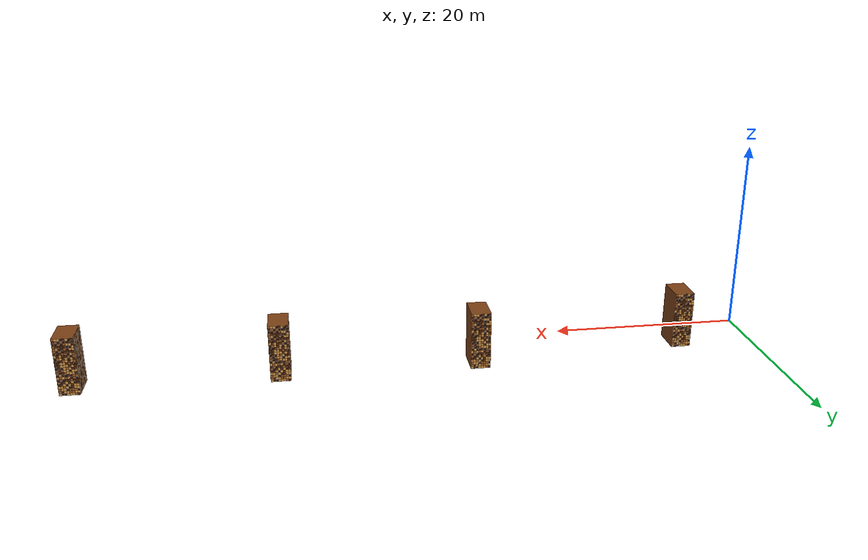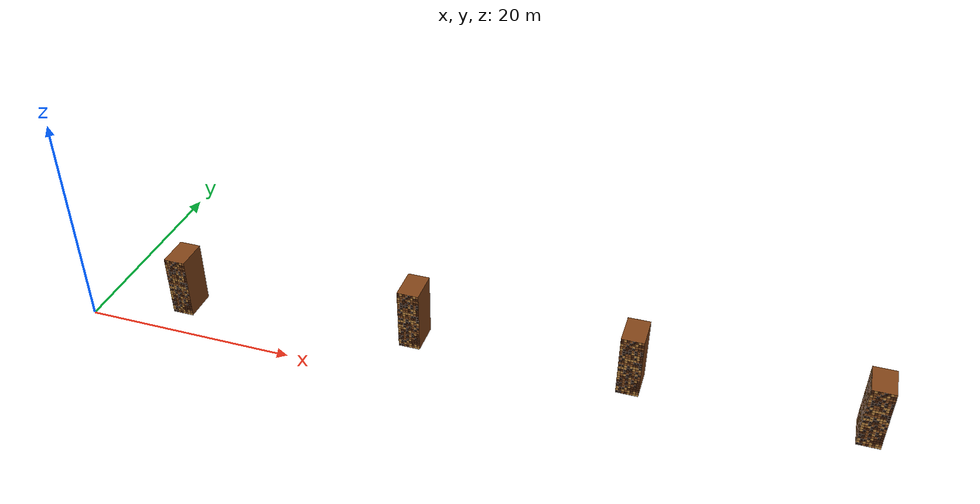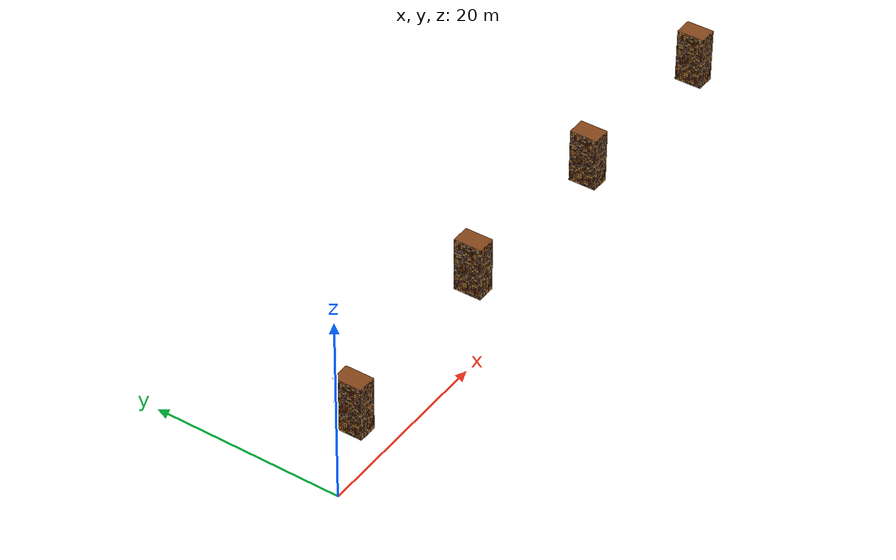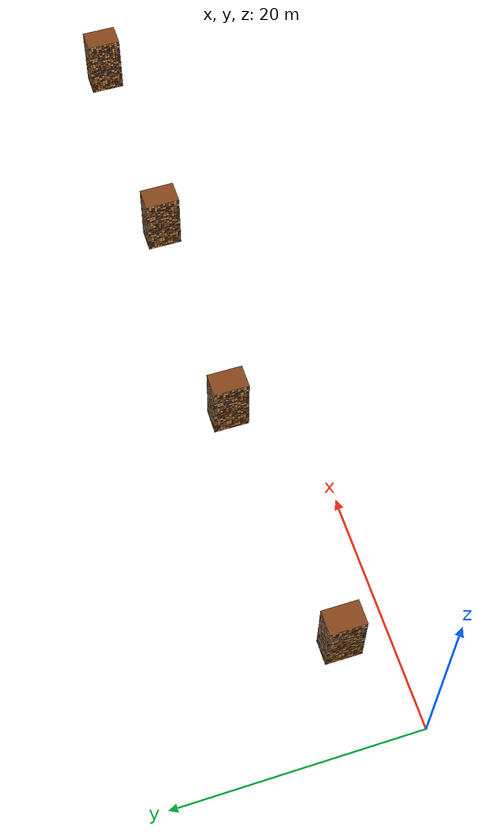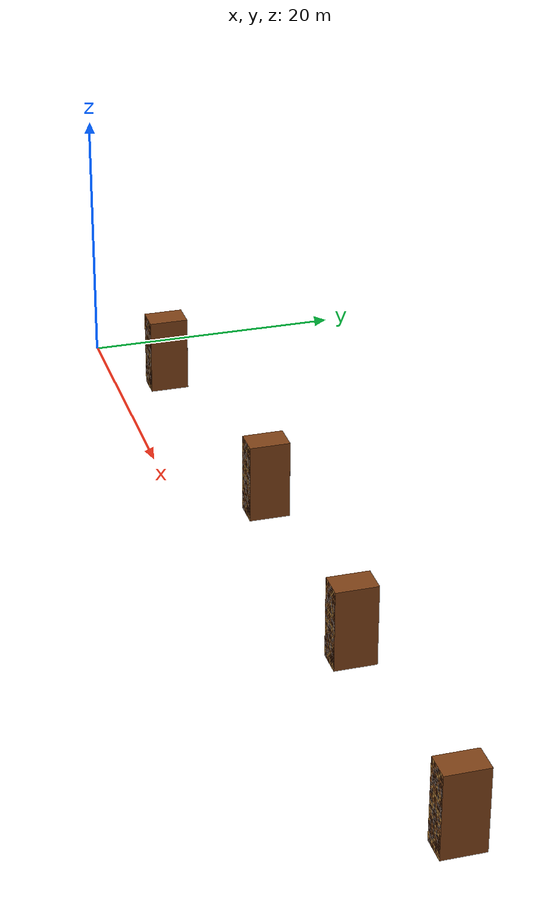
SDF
<sdf version="1.9">
 <world name="monocular_visual_highspeed_10">
  <include><name>obstacle_0</name><uri>model://monocular_textured_box</uri><pose>8 4 3 0 0 0</pose></include>
  <include><name>obstacle_1</name><uri>model://monocular_textured_box</uri><pose>30 6 3 0 0 0</pose></include>
  <include><name>obstacle_2</name><uri>model://monocular_textured_box</uri><pose>50 6 3 0 0 0</pose></include>
  <include><name>obstacle_3</name><uri>model://monocular_textured_box</uri><pose>70 6 3 0 0 0</pose></include>
 </world>
</sdf>
